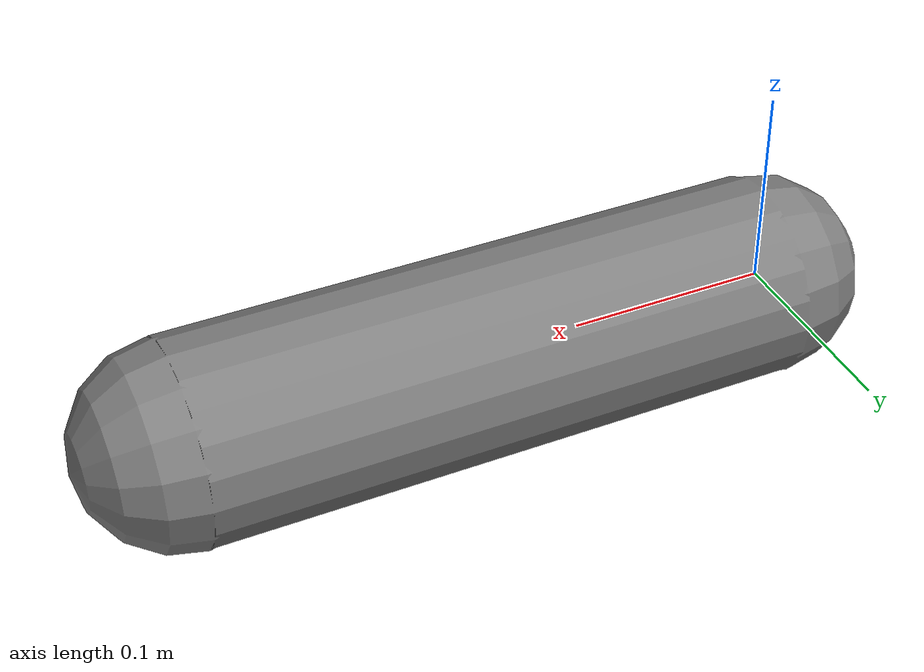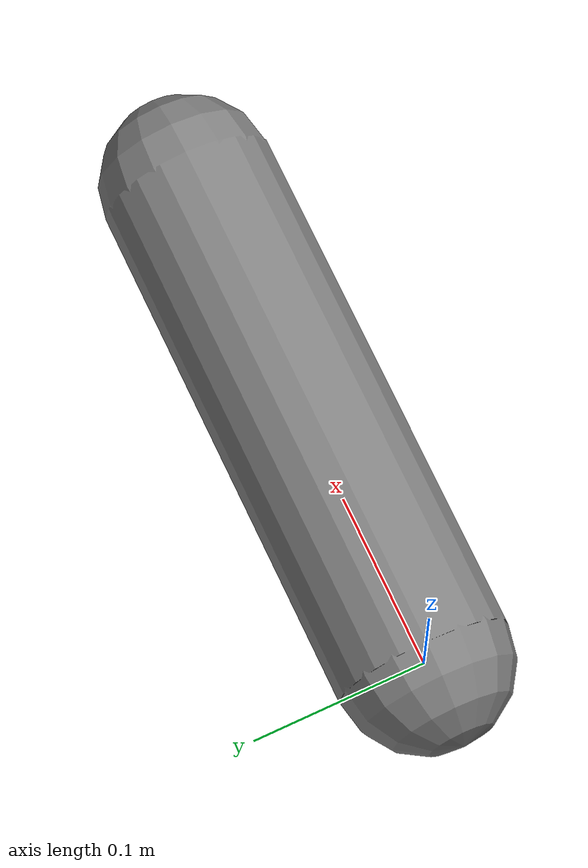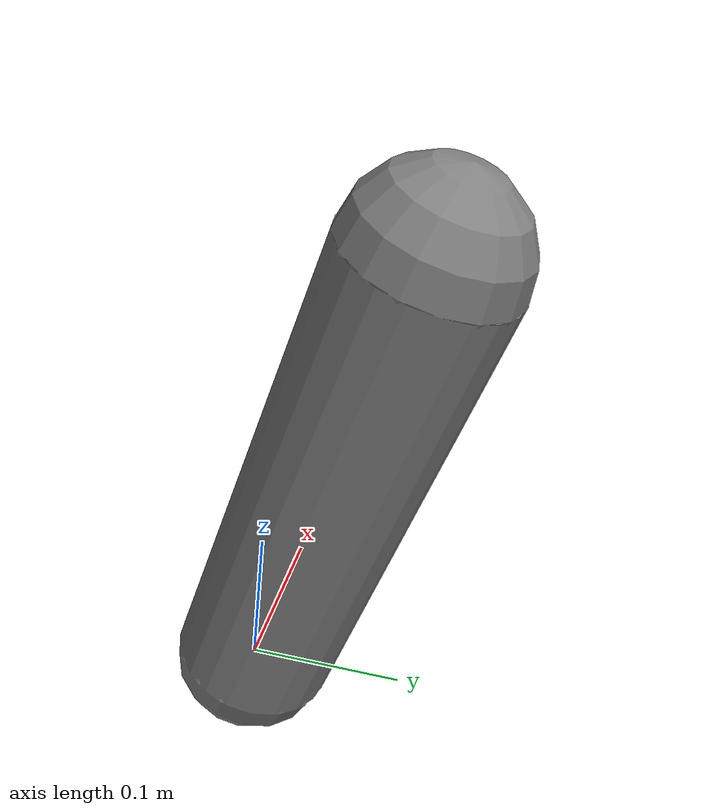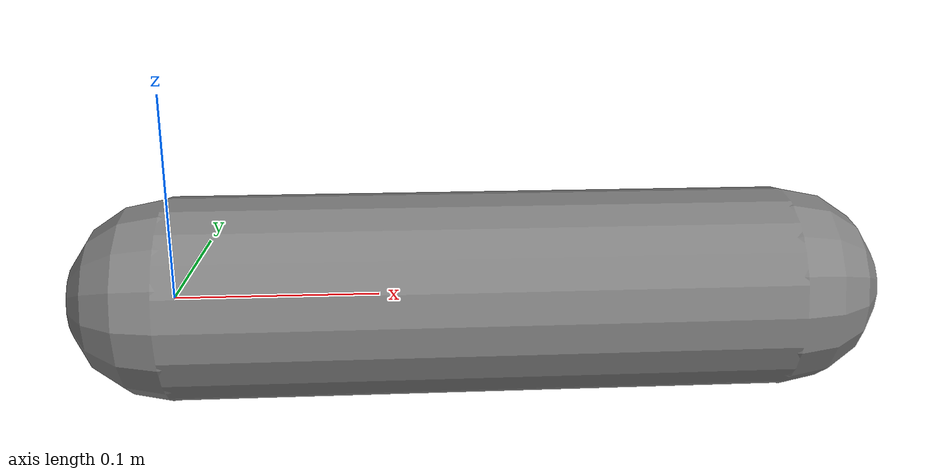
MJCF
<mujoco model="ref_joint_limit">
            <compiler angle="radian"/>
            <option gravity="0 0 -9.81" timestep="0.001" solver="Newton"/>
            <worldbody>
                <body name="arm" pos="0 0 0">
                    <joint name="j" type="hinge" limited="true" range="-1.0 1.0"
                           damping="0.1"/>
                    <geom type="capsule" size="0.05" fromto="0 0 0 0.3 0 0" mass="1.0"/>
                </body>
            </worldbody>
        </mujoco>
